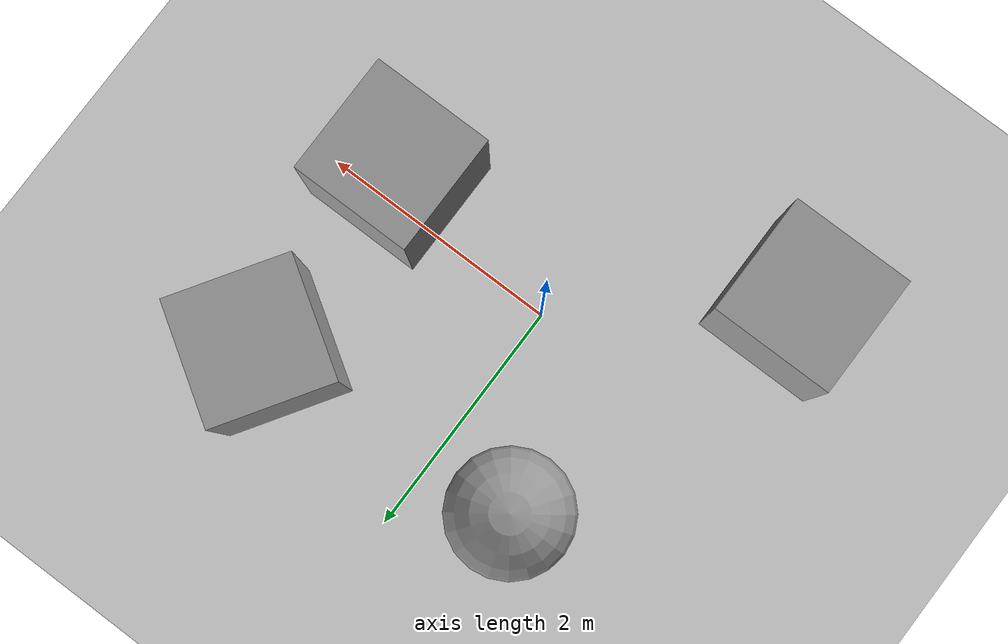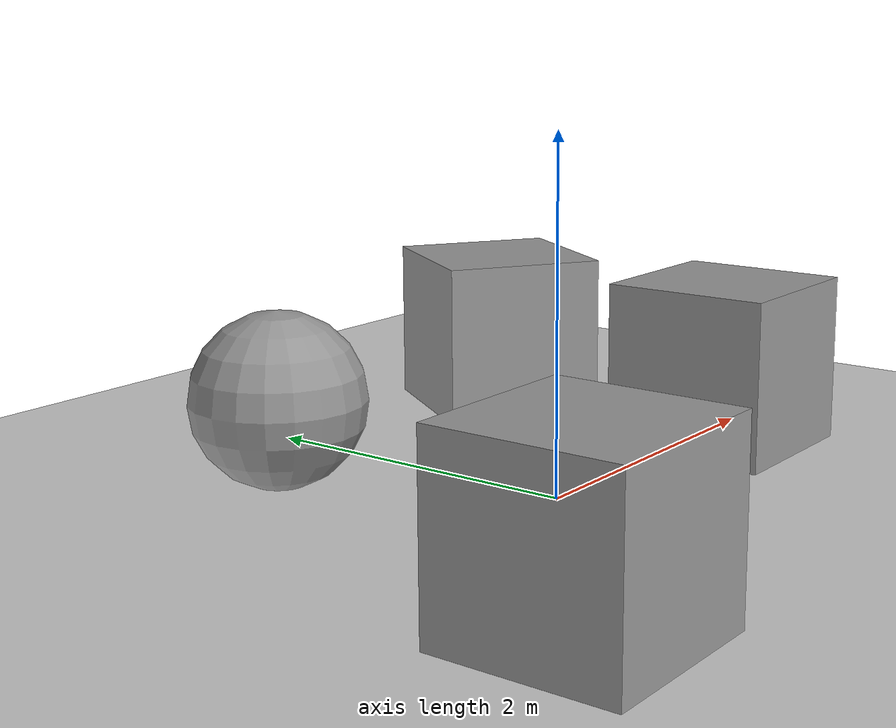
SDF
<sdf version="1.7">
 <world name="default">
  <plugin name="gazebo_ros_state" filename="libgazebo_ros_state.so">
   <ros><namespace>/gazebo</namespace></ros>
   <update_rate>100.0</update_rate>
  </plugin>
  <light name="sun" type="directional">
   <pose>0 0 10 0 -0 0</pose>
   <diffuse>0.8 0.8 0.8 1</diffuse>
   <specular>0.2 0.2 0.2 1</specular>
   <attenuation>
    <range>1000</range>
    <constant>0.9</constant>
    <linear>0.01</linear>
    <quadratic>0.001</quadratic>
   </attenuation>
   <direction>-0.5 0.1 -0.9</direction>
   <spot><inner_angle>0</inner_angle><outer_angle>0</outer_angle><falloff>0</falloff></spot>
  </light>
  <model name="ground_plane">
   <static>1</static>
   <link name="link">
    <collision name="collision">
     <geometry><plane><normal>0 0 1</normal><size>100 100</size></plane></geometry>
     <surface><friction><ode><mu>100</mu><mu2>50</mu2></ode></friction></surface>
    </collision>
    <visual name="visual">
     <cast_shadows>0</cast_shadows>
     <geometry><plane><normal>0 0 1</normal><size>100 100</size></plane></geometry>
     <material>
      <script><uri>file://media/materials/scripts/gazebo.material</uri><name>Gazebo/Grey</name></script>
     </material>
    </visual>
   </link>
  </model>
  <gravity>0 0 -9.8</gravity>
  <magnetic_field>6e-06 2.3e-05 -4.2e-05</magnetic_field>
  <atmosphere type="adiabatic"/>
  <physics type="ode">
   <max_step_size>0.001</max_step_size>
   <real_time_factor>1</real_time_factor>
   <real_time_update_rate>1000</real_time_update_rate>
   <ode><solver><iters>100</iters></solver></ode>
  </physics>
  <scene><ambient>0.4 0.4 0.4 1</ambient><background>0.7 0.7 0.7 1</background><shadows>1</shadows></scene>
  <spherical_coordinates>
   <surface_model>EARTH_WGS84</surface_model>
   <latitude_deg>0</latitude_deg>
   <longitude_deg>0</longitude_deg>
   <elevation>0</elevation>
   <heading_deg>0</heading_deg>
  </spherical_coordinates>
  <model name="unit_box">
   <pose>1.51272 -0.181418 0.499995 0 1e-05 0</pose>
   <link name="link">
    <inertial>
     <mass>1</mass>
     <inertia>
      <ixx>0.166667</ixx>
      <ixy>0</ixy>
      <ixz>0</ixz>
      <iyy>0.166667</iyy>
      <iyz>0</iyz>
      <izz>0.166667</izz>
     </inertia>
    </inertial>
    <collision name="collision"><geometry><box><size>1 1 1</size></box></geometry></collision>
    <visual name="visual">
     <geometry><box><size>1 1 1</size></box></geometry>
     <material>
      <script><name>Gazebo/Grey</name><uri>file://media/materials/scripts/gazebo.material</uri></script>
     </material>
    </visual>
   </link>
  </model>
  <model name="unit_box2">
   <pose>-1.51271 -1.181418 0.5 0 -0 0</pose>
   <link name="link">
    <inertial>
     <mass>1</mass>
     <inertia>
      <ixx>0.166667</ixx>
      <ixy>0</ixy>
      <ixz>0</ixz>
      <iyy>0.166667</iyy>
      <iyz>0</iyz>
      <izz>0.166667</izz>
     </inertia>
    </inertial>
    <collision name="collision"><geometry><box><size>1 1 1</size></box></geometry></collision>
    <visual name="visual">
     <geometry><box><size>1 1 1</size></box></geometry>
     <material>
      <script><name>Gazebo/Grey</name><uri>file://media/materials/scripts/gazebo.material</uri></script>
     </material>
    </visual>
   </link>
  </model>
  <model name="unit_box3">
   <pose>1.5 1.5 0.5 0 -0 1</pose>
   <link name="link">
    <inertial>
     <mass>1</mass>
     <inertia>
      <ixx>0.166667</ixx>
      <ixy>0</ixy>
      <ixz>0</ixz>
      <iyy>0.166667</iyy>
      <iyz>0</iyz>
      <izz>0.166667</izz>
     </inertia>
    </inertial>
    <collision name="collision"><geometry><box><size>1 1 1</size></box></geometry></collision>
    <visual name="visual">
     <geometry><box><size>1 1 1</size></box></geometry>
     <material>
      <script><name>Gazebo/Grey</name><uri>file://media/materials/scripts/gazebo.material</uri></script>
     </material>
    </visual>
   </link>
  </model>
  <model name="unit_sphere">
   <pose>-0.725833 1.36206 0.5 0 -0 0</pose>
   <link name="link">
    <inertial>
     <mass>1</mass>
     <inertia><ixx>0.1</ixx><ixy>0</ixy><ixz>0</ixz><iyy>0.1</iyy><iyz>0</iyz><izz>0.1</izz></inertia>
    </inertial>
    <collision name="collision"><geometry><sphere><radius>0.5</radius></sphere></geometry></collision>
    <visual name="visual">
     <geometry><sphere><radius>0.5</radius></sphere></geometry>
     <material>
      <script><name>Gazebo/Grey</name><uri>file://media/materials/scripts/gazebo.material</uri></script>
     </material>
    </visual>
   </link>
  </model>
 </world>
</sdf>
